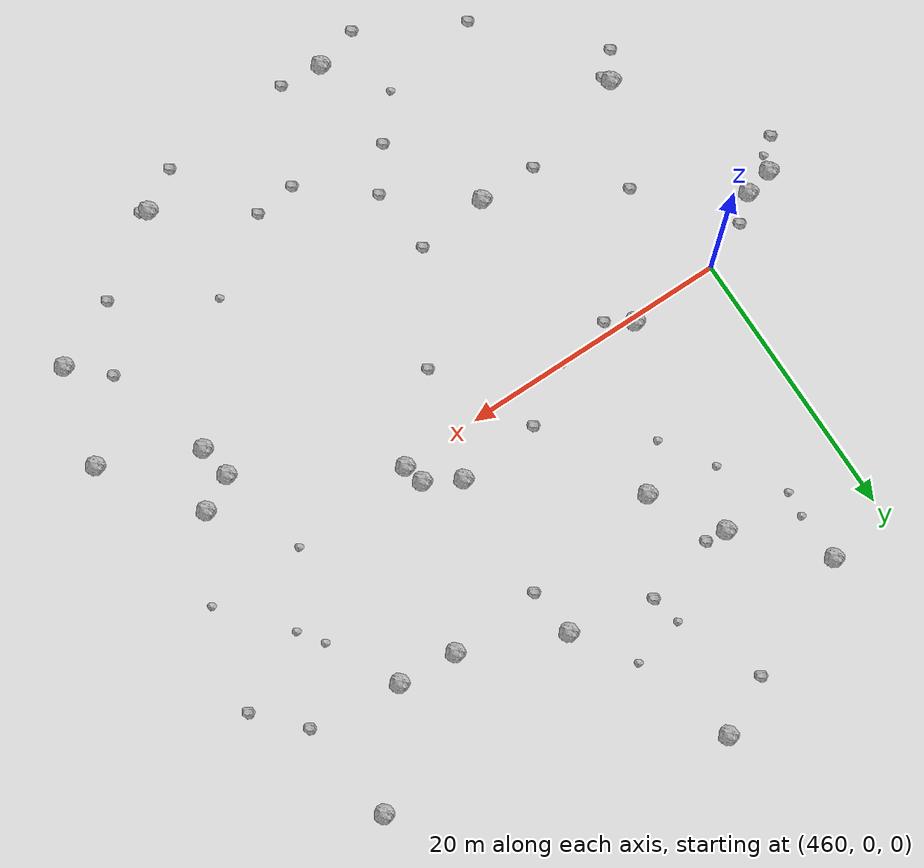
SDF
<sdf version="1.6">
 <world name="default">
  <include><uri>model://sun</uri></include>
  <model name="rock1_12_4">
   <include><uri>model://rock1</uri><pose>466.7627797848692 0.315850259058319 0.5 0 0 0</pose></include>
  </model>
  <model name="rock1_12_5">
   <include><uri>model://rock1</uri><pose>496.83166778265274 -8.72712390089086 0.5 0 0 0</pose></include>
  </model>
  <model name="rock1_12_6">
   <include><uri>model://rock1</uri><pose>499.02883346502216 -4.9219883504182995 0.5 0 0 0</pose></include>
  </model>
  <model name="rock1_12_7">
   <include><uri>model://rock1</uri><pose>485.82715181608677 0.07864122657773365 0.5 0 0 0</pose></include>
  </model>
  <model name="rock1_12_8">
   <include><uri>model://rock1</uri><pose>474.91101485277625 -27.532936360635546 0.5 0 0 0</pose></include>
  </model>
  <model name="rock1_12_9">
   <include><uri>model://rock1</uri><pose>496.46996721111253 -6.28117347649567 0.5 0 0 0</pose></include>
  </model>
  <model name="rock1_12_10">
   <include><uri>model://rock1</uri><pose>482.8169211768884 15.953583581031708 0.5 0 0 0</pose></include>
  </model>
  <model name="rock1_12_11">
   <include><uri>model://rock1</uri><pose>490.0826722907122 12.817587391950852 0.5 0 0 0</pose></include>
  </model>
  <model name="rock1_12_12">
   <include><uri>model://rock1</uri><pose>477.6719912473362 27.839063828952376 0.5 0 0 0</pose></include>
  </model>
  <model name="rock1_12_13">
   <include><uri>model://rock1</uri><pose>472.91292373846125 10.964302208618506 0.5 0 0 0</pose></include>
  </model>
  <model name="rock1_12_14">
   <include><uri>model://rock1</uri><pose>452.75183915022836 -3.5049843534138923 0.5 0 0 0</pose></include>
  </model>
  <model name="rock1_12_15">
   <include><uri>model://rock1</uri><pose>501.8011741375554 -19.007612519855776 0.5 0 0 0</pose></include>
  </model>
  <model name="rock1_12_16">
   <include><uri>model://rock1</uri><pose>458.33140632526755 -15.174672460765386 0.5 0 0 0</pose></include>
  </model>
  <model name="rock1_12_17">
   <include><uri>model://rock1</uri><pose>470.80822029898627 -12.962961206692583 0.5 0 0 0</pose></include>
  </model>
  <model name="rock1_12_18">
   <include><uri>model://rock1</uri><pose>500.1864367498167 19.34799147019983 0.5 0 0 0</pose></include>
  </model>
  <model name="rock1_12_19">
   <include><uri>model://rock1</uri><pose>454.85625162693725 -3.007737634250521 0.5 0 0 0</pose></include>
  </model>
  <model name="rock1_12_20">
   <include><uri>model://rock1</uri><pose>490.8818580430743 -25.28013459917474 0.5 0 0 0</pose></include>
  </model>
  <model name="rock1_12_21">
   <include><uri>model://rock1</uri><pose>494.4316634223755 12.467526667897594 0.5 0 0 0</pose></include>
  </model>
  <model name="rock1_12_22">
   <include><uri>model://rock1</uri><pose>503.7331297197795 -11.823978577612731 0.5 0 0 0</pose></include>
  </model>
  <model name="rock1_12_23">
   <include><uri>model://rock1</uri><pose>464.6824317740934 21.752451056623258 0.5 0 0 0</pose></include>
  </model>
  <model name="rock1_12_24">
   <include><uri>model://rock1</uri><pose>485.4229045831316 1.5926904808491997 0.5 0 0 0</pose></include>
  </model>
  <model name="rock1_12_25">
   <include><uri>model://rock1</uri><pose>482.9362411329316 3.0433903265573434 0.5 0 0 0</pose></include>
  </model>
  <model name="rock1_12_26">
   <include><uri>model://rock1</uri><pose>469.789598163949 16.051727524101004 0.5 0 0 0</pose></include>
  </model>
  <model name="rock2_12_0">
   <include><uri>model://rock2</uri><pose>476.59888145662745 17.2476786972895 0.3 0 0 0</pose></include>
  </model>
  <model name="rock2_12_1">
   <include><uri>model://rock2</uri><pose>471.64242358005174 -28.47898210308497 0.3 0 0 0</pose></include>
  </model>
  <model name="rock2_12_2">
   <include><uri>model://rock2</uri><pose>491.3942730900238 -25.493717854922735 0.3 0 0 0</pose></include>
  </model>
  <model name="rock2_12_3">
   <include><uri>model://rock2</uri><pose>476.7750813542871 2.5874703553101313 0.3 0 0 0</pose></include>
  </model>
  <model name="rock2_12_4">
   <include><uri>model://rock2</uri><pose>483.23261033649476 12.336525090702523 0.3 0 0 0</pose></include>
  </model>
  <model name="rock2_12_5">
   <include><uri>model://rock2</uri><pose>504.12709077392253 8.448870666590715 0.3 0 0 0</pose></include>
  </model>
  <model name="rock2_12_6">
   <include><uri>model://rock2</uri><pose>458.65298577832283 -15.73251446020902 0.3 0 0 0</pose></include>
  </model>
  <model name="rock2_12_7">
   <include><uri>model://rock2</uri><pose>484.49874454375845 -20.841691274103702 0.3 0 0 0</pose></include>
  </model>
  <model name="rock2_12_8">
   <include><uri>model://rock2</uri><pose>461.6087819755807 -7.873228342186511 0.3 0 0 0</pose></include>
  </model>
  <model name="rock2_12_9">
   <include><uri>model://rock2</uri><pose>487.94882432839074 -27.04577512331019 0.3 0 0 0</pose></include>
  </model>
  <model name="rock2_12_10">
   <include><uri>model://rock2</uri><pose>474.3491034233504 -20.259235181952945 0.3 0 0 0</pose></include>
  </model>
  <model name="rock2_12_11">
   <include><uri>model://rock2</uri><pose>499.2312843823867 -16.595595705242744 0.3 0 0 0</pose></include>
  </model>
  <model name="rock2_12_12">
   <include><uri>model://rock2</uri><pose>473.4667392899219 25.727343733410486 0.3 0 0 0</pose></include>
  </model>
  <model name="rock2_12_13">
   <include><uri>model://rock2</uri><pose>466.4326149095989 -12.94097630136855 0.3 0 0 0</pose></include>
  </model>
  <model name="rock2_12_14">
   <include><uri>model://rock2</uri><pose>457.0251588012243 -17.124027760177697 0.3 0 0 0</pose></include>
  </model>
  <model name="rock2_12_15">
   <include><uri>model://rock2</uri><pose>464.3315691347144 -24.503278235135344 0.3 0 0 0</pose></include>
  </model>
  <model name="rock2_12_16">
   <include><uri>model://rock2</uri><pose>480.6653247054798 -4.860035964137353 0.3 0 0 0</pose></include>
  </model>
  <model name="rock2_12_17">
   <include><uri>model://rock2</uri><pose>476.1528334743097 -12.385553600734347 0.3 0 0 0</pose></include>
  </model>
  <model name="rock2_12_18">
   <include><uri>model://rock2</uri><pose>451.100141976257 -5.557919531098957 0.3 0 0 0</pose></include>
  </model>
  <model name="rock2_12_19">
   <include><uri>model://rock2</uri><pose>501.2027941009198 11.684200179578106 0.3 0 0 0</pose></include>
  </model>
  <model name="rock2_12_20">
   <include><uri>model://rock2</uri><pose>456.5737605042451 -1.485687143761787 0.3 0 0 0</pose></include>
  </model>
  <model name="rock2_12_21">
   <include><uri>model://rock2</uri><pose>481.4236681485873 -21.204137398070817 0.3 0 0 0</pose></include>
  </model>
  <model name="rock2_12_22">
   <include><uri>model://rock2</uri><pose>476.62204538714116 -17.297855485454498 0.3 0 0 0</pose></include>
  </model>
  <model name="rock2_12_23">
   <include><uri>model://rock2</uri><pose>468.532464486664 -0.8721124690700215 0.3 0 0 0</pose></include>
  </model>
  <model name="rock2_12_24">
   <include><uri>model://rock2</uri><pose>471.3409824295766 15.941057562361834 0.3 0 0 0</pose></include>
  </model>
  <model name="rock2_12_25">
   <include><uri>model://rock2</uri><pose>478.0467165370974 -27.83370035299299 0.3 0 0 0</pose></include>
  </model>
  <model name="rock2_12_26">
   <include><uri>model://rock2</uri><pose>496.74841289169484 -21.348679880629508 0.3 0 0 0</pose></include>
  </model>
  <model name="rock3_12_0">
   <include><uri>model://rock3</uri><pose>470.12497280517397 8.180259401713336 0.2 0 0 0</pose></include>
  </model>
  <model name="rock3_12_1">
   <include><uri>model://rock3</uri><pose>476.0800264288518 19.446740099056463 0.2 0 0 0</pose></include>
  </model>
  <model name="rock3_12_2">
   <include><uri>model://rock3</uri><pose>452.3378200079985 -4.685138084483363 0.2 0 0 0</pose></include>
  </model>
  <model name="rock3_12_3">
   <include><uri>model://rock3</uri><pose>471.74864565612893 -23.25146753639312 0.2 0 0 0</pose></include>
  </model>
  <model name="rock3_12_4">
   <include><uri>model://rock3</uri><pose>494.9932483554902 0.7084479967359627 0.2 0 0 0</pose></include>
  </model>
  <model name="rock3_12_5">
   <include><uri>model://rock3</uri><pose>490.04343842955154 -17.214127807739494 0.2 0 0 0</pose></include>
  </model>
  <model name="rock3_12_6">
   <include><uri>model://rock3</uri><pose>467.7286915708335 11.940470061778186 0.2 0 0 0</pose></include>
  </model>
  <model name="rock3_12_7">
   <include><uri>model://rock3</uri><pose>464.8007358549316 18.092046522287873 0.2 0 0 0</pose></include>
  </model>
  <model name="rock3_12_8">
   <include><uri>model://rock3</uri><pose>479.94318754885785 20.31457312146925 0.2 0 0 0</pose></include>
  </model>
  <model name="rock3_12_9">
   <include><uri>model://rock3</uri><pose>497.09474570230185 7.292726153532321 0.2 0 0 0</pose></include>
  </model>
  <model name="rock3_12_10">
   <include><uri>model://rock3</uri><pose>498.3267430309567 5.543581705356729 0.2 0 0 0</pose></include>
  </model>
  <model name="rock3_12_11">
   <include><uri>model://rock3</uri><pose>502.25087406703744 0.8489686842729682 0.2 0 0 0</pose></include>
  </model>
  <model name="rock3_12_12">
   <include><uri>model://rock3</uri><pose>472.6072856909809 -0.0006091894229740547 0.2 0 0 0</pose></include>
  </model>
  <model name="rock3_12_13">
   <include><uri>model://rock3</uri><pose>464.6081964133514 16.221860295365666 0.2 0 0 0</pose></include>
  </model>
 </world>
</sdf>
